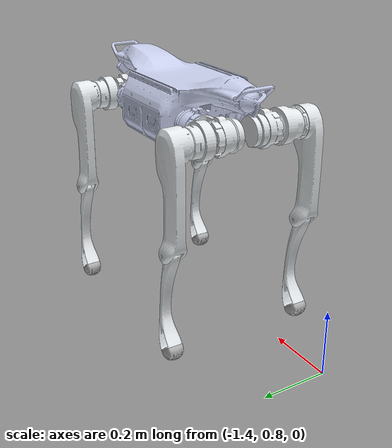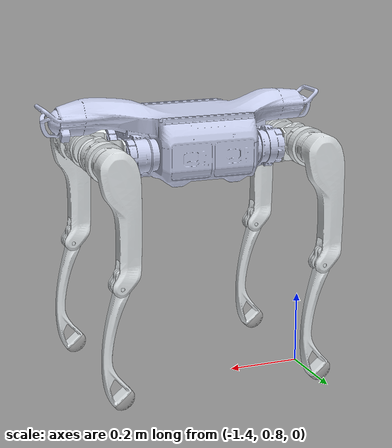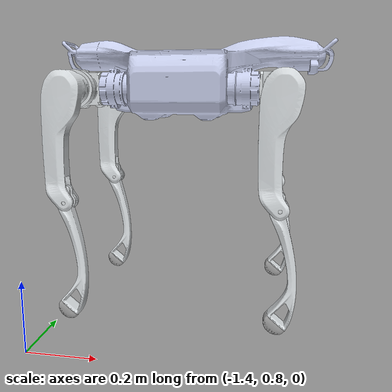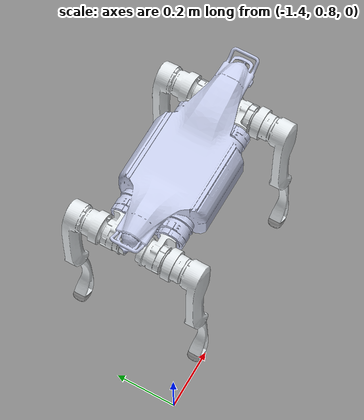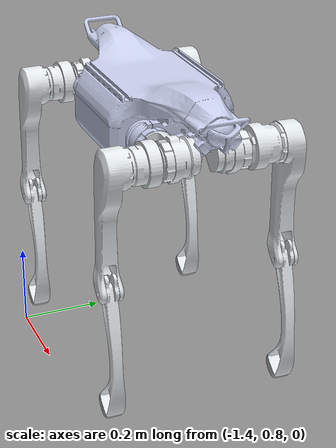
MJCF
<mujoco model="a2">
  <compiler angle="radian" meshdir="meshes/"/>
  <option gravity="0 0 -9.81"/>

  <default>
      <default class="hip_joint">
        <joint damping="0.2" armature="0.03" frictionloss="1.0" />
      </default>
      <default class="thigh_joint">
        <joint damping="0.2" armature="0.03" frictionloss="1.0" />
      </default>
      <default class="calf_joint">
        <joint damping="1.0" armature="0.03" frictionloss="3.0" />
      </default>
      <default class="collision">
        <geom group="3" priority="1" condim="6"/>
      </default>
      <default class="foot">
          <geom group="3" priority="1" condim="6"/>
      </default>
  </default>

  <asset>
    <mesh name="base_link" file="base_link.STL"/>
    <mesh name="left_front_Link1" file="left_front_Link1.STL"/>
    <mesh name="left_front_Link2" file="left_front_Link2.STL"/>
    <mesh name="left_front_Link3" file="left_front_Link3.STL"/>
    <mesh name="left_front_Link4" file="left_front_Link4.STL"/>
    <mesh name="left_hind_Link1" file="left_hind_Link1.STL"/>
    <mesh name="left_hind_Link2" file="left_hind_Link2.STL"/>
    <mesh name="left_hind_Link3" file="left_hind_Link3.STL"/>
    <mesh name="left_hind_Link4" file="left_hind_Link4.STL"/>
    <mesh name="right_front_Link1" file="right_front_Link1.STL"/>
    <mesh name="right_front_Link2" file="right_front_Link2.STL"/>
    <mesh name="right_front_Link3" file="right_front_Link3.STL"/>
    <mesh name="right_front_Link4" file="right_front_Link4.STL"/>
    <mesh name="right_hind_Link1" file="right_hind_Link1.STL"/>
    <mesh name="right_hind_Link2" file="right_hind_Link2.STL"/>
    <mesh name="right_hind_Link3" file="right_hind_Link3.STL"/>
    <mesh name="right_hind_Link4" file="right_hind_Link4.STL"/>
  </asset>

  <worldbody>
    <body name="base_link" pos="-1 1 0.7">
      <inertial pos="0.00698259 -0.000712858 0.0128895" quat="-0.00152907 0.699583 -0.00252986 0.714546" mass="19.651" diaginertia="0.472398 0.407723 0.141627"/>
      <joint name="floating_base_joint" type="free" limited="false" actuatorfrclimited="false"/>
      <site name="imu" pos="-0.0 0 0.0" />
      <geom type="mesh" contype="0" conaffinity="0" group="1" density="0" rgba="0.792157 0.819608 0.933333 1" mesh="base_link"/>
      <geom class="collision" size="0.12 0.14 0.085" pos="0 0 0.007" type="box" rgba="0.792157 0.819608 0.933333 1"/>
      <geom class="collision" size="0.04 0.025 0.01" pos="0.25 0 0.119" type="box" rgba="0.792157 0.819608 0.933333 1"/>
      <geom class="collision" size="0.025 0.015 0.008" pos="-0.22 0 0.119" quat="0.999888 0 -0.0149994 0" type="box" rgba="0.792157 0.819608 0.933333 1"/>
      <geom class="collision" size="0.03 0.05 0.005" pos="0.365 0 0.1" quat="0.939373 0 -0.342898 0" type="box" rgba="0.792157 0.819608 0.933333 1"/>
      <geom class="collision" size="0.0225 0.05 0.005" pos="-0.31 0 0.112" quat="0.939373 0 0.342898 0" type="box" rgba="0.792157 0.819608 0.933333 1"/>
      <body name="FL_hip" pos="0.25944 0.075113 0">
        <inertial pos="-0.002408 -0.01622 0.000239" quat="0.66751 0.421649 0.565191 0.239168" mass="1.62" diaginertia="0.0016644 0.00161602 0.00145995"/>
        <joint name="FL_hip_joint" pos="0 0 0" axis="1 0 0" range="-1.01 1.01" actuatorfrcrange="-120 120" class="hip_joint"/>
        <geom type="mesh" contype="0" conaffinity="0" group="1" density="0" rgba="0.898039 0.917647 0.929412 1" mesh="left_front_Link1"/>
        <body name="FL_thigh" pos="0 0.12779 0">
          <inertial pos="-0.003268 -0.03111 -0.053896" quat="0.993045 0.11348 0.0231928 0.0211279" mass="3.079" diaginertia="0.0293395 0.0280448 0.00383794"/>
          <joint name="FL_thigh_joint" pos="0 0 0" axis="0 1 0" range="-2.34 3.15" actuatorfrcrange="-120 120" class="thigh_joint"/>
          <geom type="mesh" contype="0" conaffinity="0" group="1" density="0" rgba="0.898039 0.917647 0.929412 1" mesh="left_front_Link2"/>
          <geom class="collision" size="0.048 0.06" pos="0 -0.04 0" quat="0.707035 0.707179 0 0" type="cylinder" rgba="0.898039 0.917647 0.929412 1"/>
          <geom class="collision" size="0.0275 0.018 0.085" pos="-0.025 0 -0.09" quat="0.999988 0 0.00499998 0" type="box" rgba="0.898039 0.917647 0.929412 1"/>
          <geom class="collision" size="0.0085 0.025 0.025" pos="-0.022 0 -0.27" quat="0.930508 0 -0.366273 0" type="box" rgba="0.898039 0.917647 0.929412 1"/>
          <body name="FL_calf" pos="0 0 -0.275">
            <inertial pos="0.0102138 -1.99312e-05 -0.136496" quat="0.706884 -0.0119077 -0.0120568 0.707127" mass="0.407" diaginertia="0.00511119 0.00502314 0.000177746"/>
            <joint name="FL_calf_joint" pos="0 0 0" axis="0 1 0" range="-2.77 -0.54" actuatorfrcrange="-180 180" class="calf_joint"/>
            <geom type="mesh" contype="0" conaffinity="0" group="1" density="0" rgba="0.898039 0.917647 0.929412 1" mesh="left_front_Link3"/>
            <geom class="collision" size="0.012 0.015 0.05" pos="0.018 0 -0.08" quat="0.992809 0 -0.119712 0" type="box" rgba="0.898039 0.917647 0.929412 1"/>
            <geom class="collision" size="0.011 0.015 0.04" pos="0.033 0 -0.17" quat="0.999888 0 -0.0149994 0" type="box" rgba="0.898039 0.917647 0.929412 1"/>
            <geom class="collision" size="0.01 0.018 0.03" pos="0.029 0 -0.236" quat="0.995004 0 0.0998334 0" type="box" rgba="0.898039 0.917647 0.929412 1"/>
            <geom class="collision" size="0.005 0.018 0.03" pos="0.008 0 -0.23" quat="0.942755 0 0.333487 0" type="box" rgba="0.898039 0.917647 0.929412 1"/>
            <geom pos="0 0 -0.275" quat="1 0 0 0" type="mesh" contype="0" conaffinity="0" group="1" density="0" rgba="0.698039 0.698039 0.698039 1" mesh="left_front_Link4"/>
            <geom size="0.032" pos="0 0 -0.275" rgba="0.698039 0.698039 0.698039 1" class="foot"/>
          </body>
        </body>
      </body>
      <body name="RL_hip" pos="-0.25944 0.075113 0">
        <inertial pos="0.00327 -0.01622 -9.7e-05" quat="0.358494 0.383537 0.580824 0.622113" mass="1.62" diaginertia="0.00167848 0.00163116 0.00141504"/>
        <joint name="RL_hip_joint" pos="0 0 0" axis="1 0 0" range="-1.01 1.01" actuatorfrcrange="-120 120" class="hip_joint"/>
        <geom type="mesh" contype="0" conaffinity="0" group="1" density="0" rgba="0.898039 0.917647 0.929412 1" mesh="left_hind_Link1"/>
        <body name="RL_thigh" pos="0 0.12779 0">
          <inertial pos="-0.003268 -0.03111 -0.053896" quat="0.993045 0.11348 0.0231928 0.0211279" mass="3.079" diaginertia="0.0293395 0.0280448 0.00383794"/>
          <joint name="RL_thigh_joint" pos="0 0 0" axis="0 1 0" range="-1.56 3.94" actuatorfrcrange="-120 120" class="thigh_joint"/>
          <geom type="mesh" contype="0" conaffinity="0" group="1" density="0" rgba="0.898039 0.917647 0.929412 1" mesh="left_hind_Link2"/>
          <geom class="collision" size="0.048 0.06" pos="0 -0.04 0" quat="0.707035 0.707179 0 0" type="cylinder" rgba="0.898039 0.917647 0.929412 1"/>
          <geom class="collision" size="0.0275 0.018 0.085" pos="-0.025 0 -0.09" quat="0.999988 0 0.00499998 0" type="box" rgba="0.898039 0.917647 0.929412 1"/>
          <geom class="collision" size="0.0085 0.025 0.025" pos="-0.022 0 -0.27" quat="0.930508 0 -0.366273 0" type="box" rgba="0.898039 0.917647 0.929412 1"/>
          <body name="RL_calf" pos="0 0 -0.275">
            <inertial pos="0.0102138 -1.99312e-05 -0.136496" quat="0.706884 -0.0119077 -0.0120568 0.707127" mass="0.407" diaginertia="0.00511119 0.00502314 0.000177746"/>
            <joint name="RL_calf_joint" pos="0 0 0" axis="0 1 0" range="-2.77 -0.54" actuatorfrcrange="-180 180" class="calf_joint"/>
            <geom type="mesh" contype="0" conaffinity="0" group="1" density="0" rgba="0.898039 0.917647 0.929412 1" mesh="left_hind_Link3"/>
            <geom class="collision" size="0.012 0.015 0.05" pos="0.018 0 -0.08" quat="0.992809 0 -0.119712 0" type="box" rgba="0.898039 0.917647 0.929412 1"/>
            <geom class="collision" size="0.011 0.015 0.04" pos="0.033 0 -0.17" quat="0.999888 0 -0.0149994 0" type="box" rgba="0.898039 0.917647 0.929412 1"/>
            <geom class="collision" size="0.01 0.018 0.03" pos="0.029 0 -0.236" quat="0.995004 0 0.0998334 0" type="box" rgba="0.898039 0.917647 0.929412 1"/>
            <geom class="collision" size="0.005 0.018 0.03" pos="0.008 0 -0.23" quat="0.942755 0 0.333487 0" type="box" rgba="0.898039 0.917647 0.929412 1"/>
            <geom pos="0 0 -0.275" quat="1 0 0 0" type="mesh" contype="0" conaffinity="0" group="1" density="0" rgba="0.698039 0.698039 0.698039 1" mesh="left_hind_Link4"/>
            <geom size="0.032" pos="0 0 -0.275" rgba="0.698039 0.698039 0.698039 1" class="foot"/>
          </body>
        </body>
      </body>
      <body name="FR_hip" pos="0.25944 -0.075113 0">
        <inertial pos="-0.002465 0.01622 0.000318" quat="0.244263 0.553086 0.449878 0.657299" mass="1.62" diaginertia="0.0016672 0.00160755 0.00146457"/>
        <joint name="FR_hip_joint" pos="0 0 0" axis="1 0 0" range="-1.01 1.01" actuatorfrcrange="-120 120" class="hip_joint"/>
        <geom type="mesh" contype="0" conaffinity="0" group="1" density="0" rgba="0.898039 0.917647 0.929412 1" mesh="right_front_Link1"/>
        <body name="FR_thigh" pos="0 -0.12779 0">
          <inertial pos="-0.003256 0.031125 -0.053921" quat="0.993054 -0.113587 0.0234158 -0.0198545" mass="3.077" diaginertia="0.029323 0.028038 0.00383842"/>
          <joint name="FR_thigh_joint" pos="0 0 0" axis="0 1 0" range="-2.34 3.15" actuatorfrcrange="-120 120" class="thigh_joint"/>
          <geom type="mesh" contype="0" conaffinity="0" group="1" density="0" rgba="0.898039 0.917647 0.929412 1" mesh="right_front_Link2"/>
          <geom class="collision" size="0.048 0.06" pos="0 0.04 0" quat="0.707035 0.707179 0 0" type="cylinder" rgba="0.898039 0.917647 0.929412 1"/>
          <geom class="collision" size="0.0275 0.018 0.085" pos="-0.025 0 -0.09" quat="0.999988 0 0.00499998 0" type="box" rgba="0.898039 0.917647 0.929412 1"/>
          <geom class="collision" size="0.0085 0.025 0.025" pos="-0.022 0 -0.27" quat="0.930508 0 -0.366273 0" type="box" rgba="0.898039 0.917647 0.929412 1"/>
          <body name="FR_calf" pos="0 0 -0.275">
            <inertial pos="0.0102138 1.55479e-05 -0.136496" quat="0.707151 -0.0120743 -0.0118903 0.706859" mass="0.407" diaginertia="0.00511119 0.00502314 0.000177746"/>
            <joint name="FR_calf_joint" pos="0 0 0" axis="0 1 0" range="-2.77 -0.54" actuatorfrcrange="-180 180" class="calf_joint"/>
            <geom type="mesh" contype="0" conaffinity="0" group="1" density="0" rgba="0.898039 0.917647 0.929412 1" mesh="right_front_Link3"/>
            <geom class="collision" size="0.012 0.015 0.05" pos="0.018 0 -0.08" quat="0.992809 0 -0.119712 0" type="box" rgba="0.898039 0.917647 0.929412 1"/>
            <geom class="collision" size="0.011 0.015 0.04" pos="0.033 0 -0.17" quat="0.999888 0 -0.0149994 0" type="box" rgba="0.898039 0.917647 0.929412 1"/>
            <geom class="collision" size="0.01 0.018 0.03" pos="0.029 0 -0.236" quat="0.995004 0 0.0998334 0" type="box" rgba="0.898039 0.917647 0.929412 1"/>
            <geom class="collision" size="0.005 0.018 0.03" pos="0.008 0 -0.23" quat="0.942755 0 0.333487 0" type="box" rgba="0.898039 0.917647 0.929412 1"/>
            <geom pos="0 0 -0.275" quat="1 0 0 0" type="mesh" contype="0" conaffinity="0" group="1" density="0" rgba="0.698039 0.698039 0.698039 1" mesh="right_front_Link4"/>
            <geom size="0.032" pos="0 0 -0.275" rgba="0.698039 0.698039 0.698039 1" class="foot"/>
          </body>
        </body>
      </body>
      <body name="RR_hip" pos="-0.25944 -0.075113 0">
        <inertial pos="0.00327 0.01622 -3.7e-05" quat="0.616206 0.585144 0.36648 0.378931" mass="1.62" diaginertia="0.00167769 0.00163476 0.00141225"/>
        <joint name="RR_hip_joint" pos="0 0 0" axis="1 0 0" range="-1.01 1.01" actuatorfrcrange="-120 120" class="hip_joint"/>
        <geom type="mesh" contype="0" conaffinity="0" group="1" density="0" rgba="0.898039 0.917647 0.929412 1" mesh="right_hind_Link1"/>
        <body name="RR_thigh" pos="0 -0.12779 0">
          <inertial pos="-0.003256 0.031125 -0.053921" quat="0.993054 -0.113587 0.0234158 -0.0198545" mass="3.077" diaginertia="0.029323 0.028038 0.00383842"/>
          <joint name="RR_thigh_joint" pos="0 0 0" axis="0 1 0" range="-1.56 3.94" actuatorfrcrange="-120 120" class="thigh_joint"/>
          <geom type="mesh" contype="0" conaffinity="0" group="1" density="0" rgba="0.898039 0.917647 0.929412 1" mesh="right_hind_Link2"/>
          <geom class="collision" size="0.048 0.06" pos="0 0.04 0" quat="0.707035 0.707179 0 0" type="cylinder" rgba="0.898039 0.917647 0.929412 1"/>
          <geom class="collision" size="0.0275 0.018 0.085" pos="-0.025 0 -0.09" quat="0.999988 0 0.00499998 0" type="box" rgba="0.898039 0.917647 0.929412 1"/>
          <geom class="collision" size="0.0085 0.025 0.025" pos="-0.022 0 -0.27" quat="0.930508 0 -0.366273 0" type="box" rgba="0.898039 0.917647 0.929412 1"/>
          <body name="RR_calf" pos="0 0 -0.275">
            <inertial pos="0.0102138 1.55479e-05 -0.136496" quat="0.707151 -0.0120743 -0.0118903 0.706859" mass="0.407" diaginertia="0.00511119 0.00502314 0.000177746"/>
            <joint name="RR_calf_joint" pos="0 0 0" axis="0 1 0" range="-2.77 -0.54" actuatorfrcrange="-180 180" class="calf_joint"/>
            <geom type="mesh" contype="0" conaffinity="0" group="1" density="0" rgba="0.898039 0.917647 0.929412 1" mesh="right_hind_Link3"/>
            <geom class="collision" size="0.012 0.015 0.05" pos="0.018 0 -0.08" quat="0.992809 0 -0.119712 0" type="box" rgba="0.898039 0.917647 0.929412 1"/>
            <geom class="collision" size="0.011 0.015 0.04" pos="0.033 0 -0.17" quat="0.999888 0 -0.0149994 0" type="box" rgba="0.898039 0.917647 0.929412 1"/>
            <geom class="collision" size="0.01 0.018 0.03" pos="0.029 0 -0.236" quat="0.995004 0 0.0998334 0" type="box" rgba="0.898039 0.917647 0.929412 1"/>
            <geom class="collision" size="0.005 0.018 0.03" pos="0.008 0 -0.23" quat="0.942755 0 0.333487 0" type="box" rgba="0.898039 0.917647 0.929412 1"/>
            <geom pos="0 0 -0.275" quat="1 0 0 0" type="mesh" contype="0" conaffinity="0" group="1" density="0" rgba="0.698039 0.698039 0.698039 1" mesh="right_hind_Link4"/>
            <geom size="0.032" pos="0 0 -0.275" rgba="0.698039 0.698039 0.698039 1" class="foot"/>
          </body>
        </body>
      </body>
    </body>
  </worldbody>

  <actuator>
    <motor ctrlrange="-120 120"  name="FR_hip" joint="FR_hip_joint"/>
    <motor ctrlrange="-120 120"  name="FR_thigh" joint="FR_thigh_joint"/>
    <motor ctrlrange="-180 180"  name="FR_calf" joint="FR_calf_joint"/>
    <motor ctrlrange="-120 120"  name="FL_hip" joint="FL_hip_joint"/>
    <motor ctrlrange="-120 120"  name="FL_thigh" joint="FL_thigh_joint"/>
    <motor ctrlrange="-180 180" name="FL_calf" joint="FL_calf_joint"/>
    <motor ctrlrange="-120 120"  name="RR_hip" joint="RR_hip_joint"/>
    <motor ctrlrange="-120 120"  name="RR_thigh" joint="RR_thigh_joint"/>
    <motor ctrlrange="-180 180" name="RR_calf" joint="RR_calf_joint"/>
    <motor ctrlrange="-120 120"  name="RL_hip" joint="RL_hip_joint"/>
    <motor ctrlrange="-120 120"  name="RL_thigh" joint="RL_thigh_joint"/>
    <motor ctrlrange="-180 180" name="RL_calf" joint="RL_calf_joint"/>
  </actuator>

  <sensor>
    <jointpos name="FR_hip_pos" joint="FR_hip_joint" />
    <jointpos name="FR_thigh_pos" joint="FR_thigh_joint" />
    <jointpos name="FR_calf_pos" joint="FR_calf_joint" />
    <jointpos name="FL_hip_pos" joint="FL_hip_joint" />
    <jointpos name="FL_thigh_pos" joint="FL_thigh_joint" />
    <jointpos name="FL_calf_pos" joint="FL_calf_joint" />
    <jointpos name="RR_hip_pos" joint="RR_hip_joint" />
    <jointpos name="RR_thigh_pos" joint="RR_thigh_joint" />
    <jointpos name="RR_calf_pos" joint="RR_calf_joint" />
    <jointpos name="RL_hip_pos" joint="RL_hip_joint" />
    <jointpos name="RL_thigh_pos" joint="RL_thigh_joint" />
    <jointpos name="RL_calf_pos" joint="RL_calf_joint" />

    <jointvel name="FR_hip_vel" joint="FR_hip_joint" />
    <jointvel name="FR_thigh_vel" joint="FR_thigh_joint" />
    <jointvel name="FR_calf_vel" joint="FR_calf_joint" />
    <jointvel name="FL_hip_vel" joint="FL_hip_joint" />
    <jointvel name="FL_thigh_vel" joint="FL_thigh_joint" />
    <jointvel name="FL_calf_vel" joint="FL_calf_joint" />
    <jointvel name="RR_hip_vel" joint="RR_hip_joint" />
    <jointvel name="RR_thigh_vel" joint="RR_thigh_joint" />
    <jointvel name="RR_calf_vel" joint="RR_calf_joint" />
    <jointvel name="RL_hip_vel" joint="RL_hip_joint" />
    <jointvel name="RL_thigh_vel" joint="RL_thigh_joint" />
    <jointvel name="RL_calf_vel" joint="RL_calf_joint" />

    <jointactuatorfrc name="FR_hip_torque" joint="FR_hip_joint" noise="0.01" />
    <jointactuatorfrc name="FR_thigh_torque" joint="FR_thigh_joint" noise="0.01" />
    <jointactuatorfrc name="FR_calf_torque" joint="FR_calf_joint" noise="0.01" />
    <jointactuatorfrc name="FL_hip_torque" joint="FL_hip_joint" noise="0.01" />
    <jointactuatorfrc name="FL_thigh_torque" joint="FL_thigh_joint" noise="0.01" />
    <jointactuatorfrc name="FL_calf_torque" joint="FL_calf_joint" noise="0.01" />
    <jointactuatorfrc name="RR_hip_torque" joint="RR_hip_joint" noise="0.01" />
    <jointactuatorfrc name="RR_thigh_torque" joint="RR_thigh_joint" noise="0.01" />
    <jointactuatorfrc name="RR_calf_torque" joint="RR_calf_joint" noise="0.01" />
    <jointactuatorfrc name="RL_hip_torque" joint="RL_hip_joint" noise="0.01" />
    <jointactuatorfrc name="RL_thigh_torque" joint="RL_thigh_joint" noise="0.01" />
    <jointactuatorfrc name="RL_calf_torque" joint="RL_calf_joint" noise="0.01" />

    <framequat name="imu_quat" objtype="site" objname="imu" noise="0.01" />
    <gyro name="imu_gyro" site="imu" noise="0.01" />
    <accelerometer name="imu_acc" site="imu" noise="0.01" />

    <framepos name="frame_pos" objtype="site" objname="imu" />
    <framelinvel name="frame_vel" objtype="site" objname="imu" />
  </sensor>

</mujoco>
